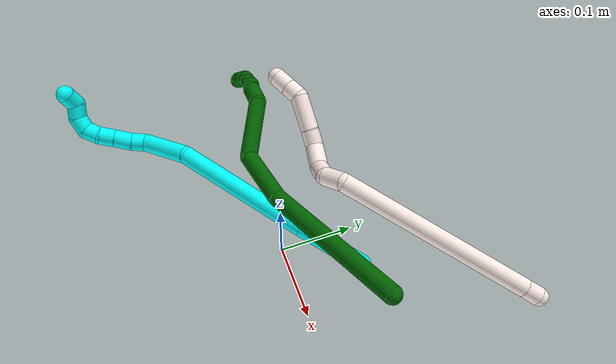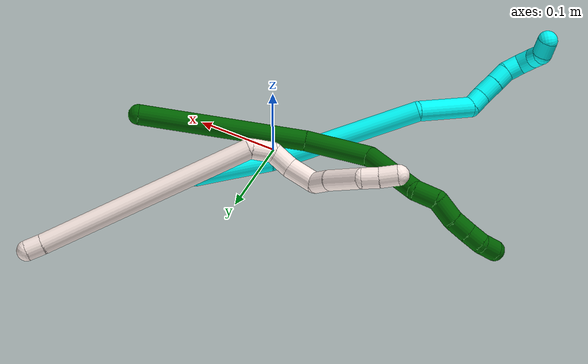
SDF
<sdf version="1.7">
 <world name="default">
  <model name="photoneo_s_sensor">
   <static>1</static>
   <pose>0 0 2 1.57079 1.57079 3.14159</pose>
   <link name="link">
    <inertial><mass>0.1</mass></inertial>
    <sensor name="sensor" type="depth">
     <update_rate>30</update_rate>
     <camera>
      <horizontal_fov>1.22</horizontal_fov>
      <image><width>1920</width><height>1200</height><format>B8G8R8</format></image>
      <clip><near>0.1</near><far>4</far></clip>
      <depth_camera><output>points</output></depth_camera>
     </camera>
     <plugin name="camera_plugin" filename="libgazebo_ros_depth_camera.so">
      <baseline>0.2</baseline>
      <alwaysOn>1</alwaysOn>
      <updateRate>0.0</updateRate>
      <cameraName>camera_ir</cameraName>
      <imageTopicName>/camera/color/image_raw</imageTopicName>
      <cameraInfoTopicName>/camera/color/camera_info</cameraInfoTopicName>
      <depthImageTopicName>/camera/depth/image_raw</depthImageTopicName>
      <depthImageCameraInfoTopicName>/camera/depth/camera_info</depthImageCameraInfoTopicName>
      <pointCloudTopicName>/camera/depth/points</pointCloudTopicName>
      <frameName>fr_optical</frameName>
      <pointCloudCutoff>0.1</pointCloudCutoff>
      <pointCloudCutoffMax>2.0</pointCloudCutoffMax>
      <distortionK1>0</distortionK1>
      <distortionK2>0</distortionK2>
      <distortionK3>0</distortionK3>
      <distortionT1>0</distortionT1>
      <distortionT2>0</distortionT2>
      <CxPrime>0</CxPrime>
      <Cx>0</Cx>
      <Cy>0</Cy>
      <focalLength>0</focalLength>
      <hackBaseline>0</hackBaseline>
     </plugin>
    </sensor>
   </link>
  </model>
  <model name="bin">
   <static>1</static>
   <link name="bottom">
    <collision name="collision-bottom">
     <pose>0 0 -0.01 0 -0 0</pose>
     <geometry><box><size>0.8 0.6 0.02</size></box></geometry>
     <surface>
      <friction><ode><mu>100</mu><mu2>100</mu2></ode></friction>
      <contact><collide_bitmask>65535</collide_bitmask></contact>
     </surface>
    </collision>
   </link>
   <link name="west_wall">
    <collision name="collision-west_wall">
     <pose>-0.41 0 0.1 0 -0 0</pose>
     <geometry><box><size>0.02 0.6 0.2</size></box></geometry>
     <surface>
      <friction><ode><mu>100</mu><mu2>100</mu2></ode></friction>
      <contact><collide_bitmask>65535</collide_bitmask></contact>
     </surface>
    </collision>
   </link>
   <link name="east_wall">
    <collision name="collision-east_wall">
     <pose>0.41 0 0.1 0 -0 0</pose>
     <geometry><box><size>0.02 0.6 0.2</size></box></geometry>
     <surface>
      <friction><ode><mu>100</mu><mu2>100</mu2></ode></friction>
      <contact><collide_bitmask>65535</collide_bitmask></contact>
     </surface>
    </collision>
   </link>
   <link name="south_wall">
    <collision name="collision-south_wall">
     <pose>0 -0.31 0.1 0 -0 0</pose>
     <geometry><box><size>0.8 0.02 0.2</size></box></geometry>
     <surface>
      <friction><ode><mu>100</mu><mu2>100</mu2></ode></friction>
      <contact><collide_bitmask>65535</collide_bitmask></contact>
     </surface>
    </collision>
   </link>
   <link name="north_wall">
    <collision name="collision-north_wall">
     <pose>0 0.31 0.1 0 -0 0</pose>
     <geometry><box><size>0.8 0.02 0.2</size></box></geometry>
     <surface>
      <friction><ode><mu>100</mu><mu2>100</mu2></ode></friction>
      <contact><collide_bitmask>65535</collide_bitmask></contact>
     </surface>
    </collision>
   </link>
  </model>
  <model name="3">
   <static>0</static>
   <link name="3">
    <collision name="collision-cylinder-e_1_1_4">
     <pose>-0.003328 -0.001134 0.047422 0.023901 -0.070034 -0.000837</pose>
     <geometry><cylinder><radius>0.0125</radius><length>0.095104</length></cylinder></geometry>
     <surface>
      <friction><ode><mu>1.16</mu><mu2>1.16</mu2><slip1>0</slip1><slip2>0</slip2></ode></friction>
      <contact><ode><kp>1e+06</kp><kd>1</kd><max_vel>0</max_vel><min_depth>0.001</min_depth></ode></contact>
     </surface>
    </collision>
    <visual name="visual-cylinder-e_1_1_4">
     <pose>-0.003328 -0.001134 0.047422 0.023901 -0.070034 -0.000837</pose>
     <geometry><cylinder><radius>0.0125</radius><length>0.095104</length></cylinder></geometry>
     <material><ambient>0.003922 1 0.996078 1</ambient></material>
    </visual>
    <collision name="collision-cylinder-e_2_4_5">
     <pose>-0.007986 -0.018782 0.18823 0.175034 -0.01403 -0.001231</pose>
     <geometry><cylinder><radius>0.0125</radius><length>0.18969</length></cylinder></geometry>
     <surface>
      <friction><ode><mu>1.16</mu><mu2>1.16</mu2><slip1>0</slip1><slip2>0</slip2></ode></friction>
      <contact><ode><kp>1e+06</kp><kd>1</kd><max_vel>0</max_vel><min_depth>0.001</min_depth></ode></contact>
     </surface>
    </collision>
    <visual name="visual-cylinder-e_2_4_5">
     <pose>-0.007986 -0.018782 0.18823 0.175034 -0.01403 -0.001231</pose>
     <geometry><cylinder><radius>0.0125</radius><length>0.18969</length></cylinder></geometry>
     <material><ambient>0.003922 1 0.996078 1</ambient></material>
    </visual>
    <collision name="collision-cylinder-e_3_5_6">
     <pose>-0.019521 -0.030261 0.315017 -0.149641 -0.293396 0.022151</pose>
     <geometry><cylinder><radius>0.0125</radius><length>0.070571</length></cylinder></geometry>
     <surface>
      <friction><ode><mu>1.16</mu><mu2>1.16</mu2><slip1>0</slip1><slip2>0</slip2></ode></friction>
      <contact><ode><kp>1e+06</kp><kd>1</kd><max_vel>0</max_vel><min_depth>0.001</min_depth></ode></contact>
     </surface>
    </collision>
    <visual name="visual-cylinder-e_3_5_6">
     <pose>-0.019521 -0.030261 0.315017 -0.149641 -0.293396 0.022151</pose>
     <geometry><cylinder><radius>0.0125</radius><length>0.070571</length></cylinder></geometry>
     <material><ambient>0.003922 1 0.996078 1</ambient></material>
    </visual>
    <collision name="collision-cylinder-e_4_6_7">
     <pose>-0.034315 -0.030051 0.356074 0.562363 -0.469249 -0.137859</pose>
     <geometry><cylinder><radius>0.0125</radius><length>0.020295</length></cylinder></geometry>
     <surface>
      <friction><ode><mu>1.16</mu><mu2>1.16</mu2><slip1>0</slip1><slip2>0</slip2></ode></friction>
      <contact><ode><kp>1e+06</kp><kd>1</kd><max_vel>0</max_vel><min_depth>0.001</min_depth></ode></contact>
     </surface>
    </collision>
    <visual name="visual-cylinder-e_4_6_7">
     <pose>-0.034315 -0.030051 0.356074 0.562363 -0.469249 -0.137859</pose>
     <geometry><cylinder><radius>0.0125</radius><length>0.020295</length></cylinder></geometry>
     <material><ambient>0.003922 1 0.996078 1</ambient></material>
    </visual>
    <collision name="collision-cylinder-e_5_7_8">
     <pose>-0.042728 -0.040797 0.373463 0.5465 -0.323889 -0.091511</pose>
     <geometry><cylinder><radius>0.0125</radius><length>0.024031</length></cylinder></geometry>
     <surface>
      <friction><ode><mu>1.16</mu><mu2>1.16</mu2><slip1>0</slip1><slip2>0</slip2></ode></friction>
      <contact><ode><kp>1e+06</kp><kd>1</kd><max_vel>0</max_vel><min_depth>0.001</min_depth></ode></contact>
     </surface>
    </collision>
    <visual name="visual-cylinder-e_5_7_8">
     <pose>-0.042728 -0.040797 0.373463 0.5465 -0.323889 -0.091511</pose>
     <geometry><cylinder><radius>0.0125</radius><length>0.024031</length></cylinder></geometry>
     <material><ambient>0.003922 1 0.996078 1</ambient></material>
    </visual>
    <collision name="collision-cylinder-e_6_8_9">
     <pose>-0.049945 -0.051797 0.39122 0.564357 -0.343127 -0.100381</pose>
     <geometry><cylinder><radius>0.0125</radius><length>0.020173</length></cylinder></geometry>
     <surface>
      <friction><ode><mu>1.16</mu><mu2>1.16</mu2><slip1>0</slip1><slip2>0</slip2></ode></friction>
      <contact><ode><kp>1e+06</kp><kd>1</kd><max_vel>0</max_vel><min_depth>0.001</min_depth></ode></contact>
     </surface>
    </collision>
    <visual name="visual-cylinder-e_6_8_9">
     <pose>-0.049945 -0.051797 0.39122 0.564357 -0.343127 -0.100381</pose>
     <geometry><cylinder><radius>0.0125</radius><length>0.020173</length></cylinder></geometry>
     <material><ambient>0.003922 1 0.996078 1</ambient></material>
    </visual>
    <collision name="collision-cylinder-e_7_9_10">
     <pose>-0.055128 -0.059688 0.408723 0.288277 -0.179048 -0.026056</pose>
     <geometry><cylinder><radius>0.0125</radius><length>0.020093</length></cylinder></geometry>
     <surface>
      <friction><ode><mu>1.16</mu><mu2>1.16</mu2><slip1>0</slip1><slip2>0</slip2></ode></friction>
      <contact><ode><kp>1e+06</kp><kd>1</kd><max_vel>0</max_vel><min_depth>0.001</min_depth></ode></contact>
     </surface>
    </collision>
    <visual name="visual-cylinder-e_7_9_10">
     <pose>-0.055128 -0.059688 0.408723 0.288277 -0.179048 -0.026056</pose>
     <geometry><cylinder><radius>0.0125</radius><length>0.020093</length></cylinder></geometry>
     <material><ambient>0.003922 1 0.996078 1</ambient></material>
    </visual>
    <collision name="collision-cylinder-e_8_10_11">
     <pose>-0.052347 -0.06625 0.426272 0.435087 0.47433 0.106756</pose>
     <geometry><cylinder><radius>0.0125</radius><length>0.020009</length></cylinder></geometry>
     <surface>
      <friction><ode><mu>1.16</mu><mu2>1.16</mu2><slip1>0</slip1><slip2>0</slip2></ode></friction>
      <contact><ode><kp>1e+06</kp><kd>1</kd><max_vel>0</max_vel><min_depth>0.001</min_depth></ode></contact>
     </surface>
    </collision>
    <visual name="visual-cylinder-e_8_10_11">
     <pose>-0.052347 -0.06625 0.426272 0.435087 0.47433 0.106756</pose>
     <geometry><cylinder><radius>0.0125</radius><length>0.020009</length></cylinder></geometry>
     <material><ambient>0.003922 1 0.996078 1</ambient></material>
    </visual>
    <collision name="collision-cylinder-e_9_11_12">
     <pose>-0.039464 -0.073395 0.438759 0.65523 0.98061 0.35892</pose>
     <geometry><cylinder><radius>0.0125</radius><length>0.020014</length></cylinder></geometry>
     <surface>
      <friction><ode><mu>1.16</mu><mu2>1.16</mu2><slip1>0</slip1><slip2>0</slip2></ode></friction>
      <contact><ode><kp>1e+06</kp><kd>1</kd><max_vel>0</max_vel><min_depth>0.001</min_depth></ode></contact>
     </surface>
    </collision>
    <visual name="visual-cylinder-e_9_11_12">
     <pose>-0.039464 -0.073395 0.438759 0.65523 0.98061 0.35892</pose>
     <geometry><cylinder><radius>0.0125</radius><length>0.020014</length></cylinder></geometry>
     <material><ambient>0.003922 1 0.996078 1</ambient></material>
    </visual>
    <collision name="collision-cylinder-e_10_12_2">
     <pose>-0.028296 -0.085407 0.44739 1.11592 0.289062 0.181176</pose>
     <geometry><cylinder><radius>0.0125</radius><length>0.02002</length></cylinder></geometry>
     <surface>
      <friction><ode><mu>1.16</mu><mu2>1.16</mu2><slip1>0</slip1><slip2>0</slip2></ode></friction>
      <contact><ode><kp>1e+06</kp><kd>1</kd><max_vel>0</max_vel><min_depth>0.001</min_depth></ode></contact>
     </surface>
    </collision>
    <visual name="visual-cylinder-e_10_12_2">
     <pose>-0.028296 -0.085407 0.44739 1.11592 0.289062 0.181176</pose>
     <geometry><cylinder><radius>0.0125</radius><length>0.02002</length></cylinder></geometry>
     <material><ambient>0.003922 1 0.996078 1</ambient></material>
    </visual>
    <collision name="collision-sphere-2">
     <pose>-0.025443 -0.094026 0.451606 0 -0 0</pose>
     <geometry><sphere><radius>0.0125</radius></sphere></geometry>
     <surface>
      <friction><ode><mu>1.16</mu><mu2>1.16</mu2><slip1>0</slip1><slip2>0</slip2></ode></friction>
      <contact><ode><kp>1e+06</kp><kd>1</kd><max_vel>0</max_vel><min_depth>0.001</min_depth></ode></contact>
     </surface>
    </collision>
    <visual name="visual-sphere-2">
     <pose>-0.025443 -0.094026 0.451606 0 -0 0</pose>
     <geometry><sphere><radius>0.0125</radius></sphere></geometry>
     <material><ambient>0.003922 1 0.996078 1</ambient></material>
    </visual>
    <collision name="collision-sphere-12">
     <pose>-0.031149 -0.076788 0.443175 0 -0 0</pose>
     <geometry><sphere><radius>0.0125</radius></sphere></geometry>
     <surface>
      <friction><ode><mu>1.16</mu><mu2>1.16</mu2><slip1>0</slip1><slip2>0</slip2></ode></friction>
      <contact><ode><kp>1e+06</kp><kd>1</kd><max_vel>0</max_vel><min_depth>0.001</min_depth></ode></contact>
     </surface>
    </collision>
    <visual name="visual-sphere-12">
     <pose>-0.031149 -0.076788 0.443175 0 -0 0</pose>
     <geometry><sphere><radius>0.0125</radius></sphere></geometry>
     <material><ambient>0.003922 1 0.996078 1</ambient></material>
    </visual>
    <collision name="collision-sphere-11">
     <pose>-0.047778 -0.070001 0.434343 0 -0 0</pose>
     <geometry><sphere><radius>0.0125</radius></sphere></geometry>
     <surface>
      <friction><ode><mu>1.16</mu><mu2>1.16</mu2><slip1>0</slip1><slip2>0</slip2></ode></friction>
      <contact><ode><kp>1e+06</kp><kd>1</kd><max_vel>0</max_vel><min_depth>0.001</min_depth></ode></contact>
     </surface>
    </collision>
    <visual name="visual-sphere-11">
     <pose>-0.047778 -0.070001 0.434343 0 -0 0</pose>
     <geometry><sphere><radius>0.0125</radius></sphere></geometry>
     <material><ambient>0.003922 1 0.996078 1</ambient></material>
    </visual>
    <collision name="collision-sphere-10">
     <pose>-0.056917 -0.062498 0.418201 0 -0 0</pose>
     <geometry><sphere><radius>0.0125</radius></sphere></geometry>
     <surface>
      <friction><ode><mu>1.16</mu><mu2>1.16</mu2><slip1>0</slip1><slip2>0</slip2></ode></friction>
      <contact><ode><kp>1e+06</kp><kd>1</kd><max_vel>0</max_vel><min_depth>0.001</min_depth></ode></contact>
     </surface>
    </collision>
    <visual name="visual-sphere-10">
     <pose>-0.056917 -0.062498 0.418201 0 -0 0</pose>
     <geometry><sphere><radius>0.0125</radius></sphere></geometry>
     <material><ambient>0.003922 1 0.996078 1</ambient></material>
    </visual>
    <collision name="collision-sphere-9">
     <pose>-0.053338 -0.056877 0.399246 0 -0 0</pose>
     <geometry><sphere><radius>0.0125</radius></sphere></geometry>
     <surface>
      <friction><ode><mu>1.16</mu><mu2>1.16</mu2><slip1>0</slip1><slip2>0</slip2></ode></friction>
      <contact><ode><kp>1e+06</kp><kd>1</kd><max_vel>0</max_vel><min_depth>0.001</min_depth></ode></contact>
     </surface>
    </collision>
    <visual name="visual-sphere-9">
     <pose>-0.053338 -0.056877 0.399246 0 -0 0</pose>
     <geometry><sphere><radius>0.0125</radius></sphere></geometry>
     <material><ambient>0.003922 1 0.996078 1</ambient></material>
    </visual>
    <collision name="collision-sphere-4">
     <pose>-0.006655 -0.002267 0.094843 0 -0 0</pose>
     <geometry><sphere><radius>0.0125</radius></sphere></geometry>
     <surface>
      <friction><ode><mu>1.16</mu><mu2>1.16</mu2><slip1>0</slip1><slip2>0</slip2></ode></friction>
      <contact><ode><kp>1e+06</kp><kd>1</kd><max_vel>0</max_vel><min_depth>0.001</min_depth></ode></contact>
     </surface>
    </collision>
    <visual name="visual-sphere-4">
     <pose>-0.006655 -0.002267 0.094843 0 -0 0</pose>
     <geometry><sphere><radius>0.0125</radius></sphere></geometry>
     <material><ambient>0.003922 1 0.996078 1</ambient></material>
    </visual>
    <collision name="collision-sphere-1">
     <geometry><sphere><radius>0.0125</radius></sphere></geometry>
     <surface>
      <friction><ode><mu>1.16</mu><mu2>1.16</mu2><slip1>0</slip1><slip2>0</slip2></ode></friction>
      <contact><ode><kp>1e+06</kp><kd>1</kd><max_vel>0</max_vel><min_depth>0.001</min_depth></ode></contact>
     </surface>
    </collision>
    <visual name="visual-sphere-1">
     <geometry><sphere><radius>0.0125</radius></sphere></geometry>
     <material><ambient>0.003922 1 0.996078 1</ambient></material>
    </visual>
    <collision name="collision-sphere-8">
     <pose>-0.046552 -0.046717 0.383195 0 -0 0</pose>
     <geometry><sphere><radius>0.0125</radius></sphere></geometry>
     <surface>
      <friction><ode><mu>1.16</mu><mu2>1.16</mu2><slip1>0</slip1><slip2>0</slip2></ode></friction>
      <contact><ode><kp>1e+06</kp><kd>1</kd><max_vel>0</max_vel><min_depth>0.001</min_depth></ode></contact>
     </surface>
    </collision>
    <visual name="visual-sphere-8">
     <pose>-0.046552 -0.046717 0.383195 0 -0 0</pose>
     <geometry><sphere><radius>0.0125</radius></sphere></geometry>
     <material><ambient>0.003922 1 0.996078 1</ambient></material>
    </visual>
    <collision name="collision-sphere-5">
     <pose>-0.009316 -0.035297 0.281617 0 -0 0</pose>
     <geometry><sphere><radius>0.0125</radius></sphere></geometry>
     <surface>
      <friction><ode><mu>1.16</mu><mu2>1.16</mu2><slip1>0</slip1><slip2>0</slip2></ode></friction>
      <contact><ode><kp>1e+06</kp><kd>1</kd><max_vel>0</max_vel><min_depth>0.001</min_depth></ode></contact>
     </surface>
    </collision>
    <visual name="visual-sphere-5">
     <pose>-0.009316 -0.035297 0.281617 0 -0 0</pose>
     <geometry><sphere><radius>0.0125</radius></sphere></geometry>
     <material><ambient>0.003922 1 0.996078 1</ambient></material>
    </visual>
    <collision name="collision-sphere-6">
     <pose>-0.029726 -0.025226 0.348418 0 -0 0</pose>
     <geometry><sphere><radius>0.0125</radius></sphere></geometry>
     <surface>
      <friction><ode><mu>1.16</mu><mu2>1.16</mu2><slip1>0</slip1><slip2>0</slip2></ode></friction>
      <contact><ode><kp>1e+06</kp><kd>1</kd><max_vel>0</max_vel><min_depth>0.001</min_depth></ode></contact>
     </surface>
    </collision>
    <visual name="visual-sphere-6">
     <pose>-0.029726 -0.025226 0.348418 0 -0 0</pose>
     <geometry><sphere><radius>0.0125</radius></sphere></geometry>
     <material><ambient>0.003922 1 0.996078 1</ambient></material>
    </visual>
    <collision name="collision-sphere-7">
     <pose>-0.038904 -0.034877 0.363731 0 -0 0</pose>
     <geometry><sphere><radius>0.0125</radius></sphere></geometry>
     <surface>
      <friction><ode><mu>1.16</mu><mu2>1.16</mu2><slip1>0</slip1><slip2>0</slip2></ode></friction>
      <contact><ode><kp>1e+06</kp><kd>1</kd><max_vel>0</max_vel><min_depth>0.001</min_depth></ode></contact>
     </surface>
    </collision>
    <visual name="visual-sphere-7">
     <pose>-0.038904 -0.034877 0.363731 0 -0 0</pose>
     <geometry><sphere><radius>0.0125</radius></sphere></geometry>
     <material><ambient>0.003922 1 0.996078 1</ambient></material>
    </visual>
    <inertial>
     <pose>-0.018902 -0.02829 0.242039 0 -0 0</pose>
     <mass>0.5</mass>
     <inertia><ixx>0.00069</ixx><ixy>0</ixy><ixz>0</ixz><iyy>0.000676</iyy><iyz>0</iyz><izz>0.00016</izz></inertia>
    </inertial>
   </link>
   <pose>0.060456 0.091188 0.011448 -1.45426 -0.587532 2.09978</pose>
  </model>
  <model name="6">
   <static>0</static>
   <link name="6">
    <collision name="collision-cylinder-e_1_1_4">
     <pose>-0.093093 0.041727 -0.010607 -1.81973 -1.1376 1.37616</pose>
     <geometry><cylinder><radius>0.0125</radius><length>0.205134</length></cylinder></geometry>
     <surface>
      <friction><ode><mu>1.16</mu><mu2>1.16</mu2><slip1>0</slip1><slip2>0</slip2></ode></friction>
      <contact><ode><kp>1e+06</kp><kd>1</kd><max_vel>0</max_vel><min_depth>0.001</min_depth></ode></contact>
     </surface>
    </collision>
    <visual name="visual-cylinder-e_1_1_4">
     <pose>-0.093093 0.041727 -0.010607 -1.81973 -1.1376 1.37616</pose>
     <geometry><cylinder><radius>0.0125</radius><length>0.205134</length></cylinder></geometry>
     <material><ambient>0 0.392157 0.003922 1</ambient></material>
    </visual>
    <collision name="collision-cylinder-e_2_4_5">
     <pose>-0.223904 0.097382 -0.016633 -1.25301 -1.20006 0.919589</pose>
     <geometry><cylinder><radius>0.0125</radius><length>0.080935</length></cylinder></geometry>
     <surface>
      <friction><ode><mu>1.16</mu><mu2>1.16</mu2><slip1>0</slip1><slip2>0</slip2></ode></friction>
      <contact><ode><kp>1e+06</kp><kd>1</kd><max_vel>0</max_vel><min_depth>0.001</min_depth></ode></contact>
     </surface>
    </collision>
    <visual name="visual-cylinder-e_2_4_5">
     <pose>-0.223904 0.097382 -0.016633 -1.25301 -1.20006 0.919589</pose>
     <geometry><cylinder><radius>0.0125</radius><length>0.080935</length></cylinder></geometry>
     <material><ambient>0 0.392157 0.003922 1</ambient></material>
    </visual>
    <collision name="collision-cylinder-e_3_5_6">
     <pose>-0.292623 0.115995 0.019526 -0.147292 -0.77075 0.059841</pose>
     <geometry><cylinder><radius>0.0125</radius><length>0.088998</length></cylinder></geometry>
     <surface>
      <friction><ode><mu>1.16</mu><mu2>1.16</mu2><slip1>0</slip1><slip2>0</slip2></ode></friction>
      <contact><ode><kp>1e+06</kp><kd>1</kd><max_vel>0</max_vel><min_depth>0.001</min_depth></ode></contact>
     </surface>
    </collision>
    <visual name="visual-cylinder-e_3_5_6">
     <pose>-0.292623 0.115995 0.019526 -0.147292 -0.77075 0.059841</pose>
     <geometry><cylinder><radius>0.0125</radius><length>0.088998</length></cylinder></geometry>
     <material><ambient>0 0.392157 0.003922 1</ambient></material>
    </visual>
    <collision name="collision-cylinder-e_4_6_7">
     <pose>-0.336335 0.126754 0.054902 -1.01185 -1.05751 0.626086</pose>
     <geometry><cylinder><radius>0.0125</radius><length>0.029181</length></cylinder></geometry>
     <surface>
      <friction><ode><mu>1.16</mu><mu2>1.16</mu2><slip1>0</slip1><slip2>0</slip2></ode></friction>
      <contact><ode><kp>1e+06</kp><kd>1</kd><max_vel>0</max_vel><min_depth>0.001</min_depth></ode></contact>
     </surface>
    </collision>
    <visual name="visual-cylinder-e_4_6_7">
     <pose>-0.336335 0.126754 0.054902 -1.01185 -1.05751 0.626086</pose>
     <geometry><cylinder><radius>0.0125</radius><length>0.029181</length></cylinder></geometry>
     <material><ambient>0 0.392157 0.003922 1</ambient></material>
    </visual>
    <collision name="collision-cylinder-e_5_7_8">
     <pose>-0.35605 0.144874 0.063639 -1.18177 -0.493597 0.33485</pose>
     <geometry><cylinder><radius>0.0125</radius><length>0.029566</length></cylinder></geometry>
     <surface>
      <friction><ode><mu>1.16</mu><mu2>1.16</mu2><slip1>0</slip1><slip2>0</slip2></ode></friction>
      <contact><ode><kp>1e+06</kp><kd>1</kd><max_vel>0</max_vel><min_depth>0.001</min_depth></ode></contact>
     </surface>
    </collision>
    <visual name="visual-cylinder-e_5_7_8">
     <pose>-0.35605 0.144874 0.063639 -1.18177 -0.493597 0.33485</pose>
     <geometry><cylinder><radius>0.0125</radius><length>0.029566</length></cylinder></geometry>
     <material><ambient>0 0.392157 0.003922 1</ambient></material>
    </visual>
    <collision name="collision-cylinder-e_6_8_9">
     <pose>-0.370284 0.165944 0.070752 -1.33427 -0.661685 0.528384</pose>
     <geometry><cylinder><radius>0.0125</radius><length>0.023532</length></cylinder></geometry>
     <surface>
      <friction><ode><mu>1.16</mu><mu2>1.16</mu2><slip1>0</slip1><slip2>0</slip2></ode></friction>
      <contact><ode><kp>1e+06</kp><kd>1</kd><max_vel>0</max_vel><min_depth>0.001</min_depth></ode></contact>
     </surface>
    </collision>
    <visual name="visual-cylinder-e_6_8_9">
     <pose>-0.370284 0.165944 0.070752 -1.33427 -0.661685 0.528384</pose>
     <geometry><cylinder><radius>0.0125</radius><length>0.023532</length></cylinder></geometry>
     <material><ambient>0 0.392157 0.003922 1</ambient></material>
    </visual>
    <collision name="collision-cylinder-e_7_9_10">
     <pose>-0.384057 0.182507 0.074873 -1.31819 -0.698973 0.550319</pose>
     <geometry><cylinder><radius>0.0125</radius><length>0.020341</length></cylinder></geometry>
     <surface>
      <friction><ode><mu>1.16</mu><mu2>1.16</mu2><slip1>0</slip1><slip2>0</slip2></ode></friction>
      <contact><ode><kp>1e+06</kp><kd>1</kd><max_vel>0</max_vel><min_depth>0.001</min_depth></ode></contact>
     </surface>
    </collision>
    <visual name="visual-cylinder-e_7_9_10">
     <pose>-0.384057 0.182507 0.074873 -1.31819 -0.698973 0.550319</pose>
     <geometry><cylinder><radius>0.0125</radius><length>0.020341</length></cylinder></geometry>
     <material><ambient>0 0.392157 0.003922 1</ambient></material>
    </visual>
    <collision name="collision-cylinder-e_8_10_2">
     <pose>-0.396346 0.199057 0.073616 -1.91237 -0.540953 0.748648</pose>
     <geometry><cylinder><radius>0.0125</radius><length>0.022312</length></cylinder></geometry>
     <surface>
      <friction><ode><mu>1.16</mu><mu2>1.16</mu2><slip1>0</slip1><slip2>0</slip2></ode></friction>
      <contact><ode><kp>1e+06</kp><kd>1</kd><max_vel>0</max_vel><min_depth>0.001</min_depth></ode></contact>
     </surface>
    </collision>
    <visual name="visual-cylinder-e_8_10_2">
     <pose>-0.396346 0.199057 0.073616 -1.91237 -0.540953 0.748648</pose>
     <geometry><cylinder><radius>0.0125</radius><length>0.022312</length></cylinder></geometry>
     <material><ambient>0 0.392157 0.003922 1</ambient></material>
    </visual>
    <collision name="collision-sphere-2">
     <pose>-0.402091 0.208067 0.070412 0 -0 0</pose>
     <geometry><sphere><radius>0.0125</radius></sphere></geometry>
     <surface>
      <friction><ode><mu>1.16</mu><mu2>1.16</mu2><slip1>0</slip1><slip2>0</slip2></ode></friction>
      <contact><ode><kp>1e+06</kp><kd>1</kd><max_vel>0</max_vel><min_depth>0.001</min_depth></ode></contact>
     </surface>
    </collision>
    <visual name="visual-sphere-2">
     <pose>-0.402091 0.208067 0.070412 0 -0 0</pose>
     <geometry><sphere><radius>0.0125</radius></sphere></geometry>
     <material><ambient>0 0.392157 0.003922 1</ambient></material>
    </visual>
    <collision name="collision-sphere-10">
     <pose>-0.390601 0.190046 0.076819 0 -0 0</pose>
     <geometry><sphere><radius>0.0125</radius></sphere></geometry>
     <surface>
      <friction><ode><mu>1.16</mu><mu2>1.16</mu2><slip1>0</slip1><slip2>0</slip2></ode></friction>
      <contact><ode><kp>1e+06</kp><kd>1</kd><max_vel>0</max_vel><min_depth>0.001</min_depth></ode></contact>
     </surface>
    </collision>
    <visual name="visual-sphere-10">
     <pose>-0.390601 0.190046 0.076819 0 -0 0</pose>
     <geometry><sphere><radius>0.0125</radius></sphere></geometry>
     <material><ambient>0 0.392157 0.003922 1</ambient></material>
    </visual>
    <collision name="collision-sphere-9">
     <pose>-0.377513 0.174969 0.072928 0 -0 0</pose>
     <geometry><sphere><radius>0.0125</radius></sphere></geometry>
     <surface>
      <friction><ode><mu>1.16</mu><mu2>1.16</mu2><slip1>0</slip1><slip2>0</slip2></ode></friction>
      <contact><ode><kp>1e+06</kp><kd>1</kd><max_vel>0</max_vel><min_depth>0.001</min_depth></ode></contact>
     </surface>
    </collision>
    <visual name="visual-sphere-9">
     <pose>-0.377513 0.174969 0.072928 0 -0 0</pose>
     <geometry><sphere><radius>0.0125</radius></sphere></geometry>
     <material><ambient>0 0.392157 0.003922 1</ambient></material>
    </visual>
    <collision name="collision-sphere-4">
     <pose>-0.186186 0.083455 -0.021214 0 -0 0</pose>
     <geometry><sphere><radius>0.0125</radius></sphere></geometry>
     <surface>
      <friction><ode><mu>1.16</mu><mu2>1.16</mu2><slip1>0</slip1><slip2>0</slip2></ode></friction>
      <contact><ode><kp>1e+06</kp><kd>1</kd><max_vel>0</max_vel><min_depth>0.001</min_depth></ode></contact>
     </surface>
    </collision>
    <visual name="visual-sphere-4">
     <pose>-0.186186 0.083455 -0.021214 0 -0 0</pose>
     <geometry><sphere><radius>0.0125</radius></sphere></geometry>
     <material><ambient>0 0.392157 0.003922 1</ambient></material>
    </visual>
    <collision name="collision-sphere-1">
     <geometry><sphere><radius>0.0125</radius></sphere></geometry>
     <surface>
      <friction><ode><mu>1.16</mu><mu2>1.16</mu2><slip1>0</slip1><slip2>0</slip2></ode></friction>
      <contact><ode><kp>1e+06</kp><kd>1</kd><max_vel>0</max_vel><min_depth>0.001</min_depth></ode></contact>
     </surface>
    </collision>
    <visual name="visual-sphere-1">
     <geometry><sphere><radius>0.0125</radius></sphere></geometry>
     <material><ambient>0 0.392157 0.003922 1</ambient></material>
    </visual>
    <collision name="collision-sphere-8">
     <pose>-0.363054 0.15692 0.068577 0 -0 0</pose>
     <geometry><sphere><radius>0.0125</radius></sphere></geometry>
     <surface>
      <friction><ode><mu>1.16</mu><mu2>1.16</mu2><slip1>0</slip1><slip2>0</slip2></ode></friction>
      <contact><ode><kp>1e+06</kp><kd>1</kd><max_vel>0</max_vel><min_depth>0.001</min_depth></ode></contact>
     </surface>
    </collision>
    <visual name="visual-sphere-8">
     <pose>-0.363054 0.15692 0.068577 0 -0 0</pose>
     <geometry><sphere><radius>0.0125</radius></sphere></geometry>
     <material><ambient>0 0.392157 0.003922 1</ambient></material>
    </visual>
    <collision name="collision-sphere-5">
     <pose>-0.261622 0.11131 -0.012052 0 -0 0</pose>
     <geometry><sphere><radius>0.0125</radius></sphere></geometry>
     <surface>
      <friction><ode><mu>1.16</mu><mu2>1.16</mu2><slip1>0</slip1><slip2>0</slip2></ode></friction>
      <contact><ode><kp>1e+06</kp><kd>1</kd><max_vel>0</max_vel><min_depth>0.001</min_depth></ode></contact>
     </surface>
    </collision>
    <visual name="visual-sphere-5">
     <pose>-0.261622 0.11131 -0.012052 0 -0 0</pose>
     <geometry><sphere><radius>0.0125</radius></sphere></geometry>
     <material><ambient>0 0.392157 0.003922 1</ambient></material>
    </visual>
    <collision name="collision-sphere-6">
     <pose>-0.323625 0.12068 0.051103 0 -0 0</pose>
     <geometry><sphere><radius>0.0125</radius></sphere></geometry>
     <surface>
      <friction><ode><mu>1.16</mu><mu2>1.16</mu2><slip1>0</slip1><slip2>0</slip2></ode></friction>
      <contact><ode><kp>1e+06</kp><kd>1</kd><max_vel>0</max_vel><min_depth>0.001</min_depth></ode></contact>
     </surface>
    </collision>
    <visual name="visual-sphere-6">
     <pose>-0.323625 0.12068 0.051103 0 -0 0</pose>
     <geometry><sphere><radius>0.0125</radius></sphere></geometry>
     <material><ambient>0 0.392157 0.003922 1</ambient></material>
    </visual>
    <collision name="collision-sphere-7">
     <pose>-0.349046 0.132829 0.058702 0 -0 0</pose>
     <geometry><sphere><radius>0.0125</radius></sphere></geometry>
     <surface>
      <friction><ode><mu>1.16</mu><mu2>1.16</mu2><slip1>0</slip1><slip2>0</slip2></ode></friction>
      <contact><ode><kp>1e+06</kp><kd>1</kd><max_vel>0</max_vel><min_depth>0.001</min_depth></ode></contact>
     </surface>
    </collision>
    <visual name="visual-sphere-7">
     <pose>-0.349046 0.132829 0.058702 0 -0 0</pose>
     <geometry><sphere><radius>0.0125</radius></sphere></geometry>
     <material><ambient>0 0.392157 0.003922 1</ambient></material>
    </visual>
    <inertial>
     <pose>-0.217944 0.093611 0.01306 0 -0 0</pose>
     <mass>0.5</mass>
     <inertia><ixx>0.00041</ixx><ixy>0</ixy><ixz>0</ixz><iyy>0.00104</iyy><iyz>0</iyz><izz>0.000434</izz></inertia>
    </inertial>
   </link>
   <pose>0.137066 0.088907 0.082214 -1.40325 0.290992 0.356351</pose>
  </model>
  <model name="11">
   <static>0</static>
   <link name="11">
    <collision name="collision-cylinder-e_1_1_4">
     <pose>-0.006228 -0.007375 0.003402 1.13858 -0.654172 -0.427609</pose>
     <geometry><cylinder><radius>0.0125</radius><length>0.020469</length></cylinder></geometry>
     <surface>
      <friction><ode><mu>1.16</mu><mu2>1.16</mu2><slip1>0</slip1><slip2>0</slip2></ode></friction>
      <contact><ode><kp>1e+06</kp><kd>1</kd><max_vel>0</max_vel><min_depth>0.001</min_depth></ode></contact>
     </surface>
    </collision>
    <visual name="visual-cylinder-e_1_1_4">
     <pose>-0.006228 -0.007375 0.003402 1.13858 -0.654172 -0.427609</pose>
     <geometry><cylinder><radius>0.0125</radius><length>0.020469</length></cylinder></geometry>
     <material><ambient>1 0.933333 0.909804 1</ambient></material>
    </visual>
    <collision name="collision-cylinder-e_2_4_5">
     <pose>-0.091678 -0.115997 0.048661 1.17878 -0.626068 -0.426292</pose>
     <geometry><cylinder><radius>0.0125</radius><length>0.270401</length></cylinder></geometry>
     <surface>
      <friction><ode><mu>1.16</mu><mu2>1.16</mu2><slip1>0</slip1><slip2>0</slip2></ode></friction>
      <contact><ode><kp>1e+06</kp><kd>1</kd><max_vel>0</max_vel><min_depth>0.001</min_depth></ode></contact>
     </surface>
    </collision>
    <visual name="visual-cylinder-e_2_4_5">
     <pose>-0.091678 -0.115997 0.048661 1.17878 -0.626068 -0.426292</pose>
     <geometry><cylinder><radius>0.0125</radius><length>0.270401</length></cylinder></geometry>
     <material><ambient>1 0.933333 0.909804 1</ambient></material>
    </visual>
    <collision name="collision-cylinder-e_3_5_6">
     <pose>-0.184962 -0.21977 0.094518 0.563385 -1.24624 -0.41008</pose>
     <geometry><cylinder><radius>0.0125</radius><length>0.029672</length></cylinder></geometry>
     <surface>
      <friction><ode><mu>1.16</mu><mu2>1.16</mu2><slip1>0</slip1><slip2>0</slip2></ode></friction>
      <contact><ode><kp>1e+06</kp><kd>1</kd><max_vel>0</max_vel><min_depth>0.001</min_depth></ode></contact>
     </surface>
    </collision>
    <visual name="visual-cylinder-e_3_5_6">
     <pose>-0.184962 -0.21977 0.094518 0.563385 -1.24624 -0.41008</pose>
     <geometry><cylinder><radius>0.0125</radius><length>0.029672</length></cylinder></geometry>
     <material><ambient>1 0.933333 0.909804 1</ambient></material>
    </visual>
    <collision name="collision-cylinder-e_4_6_7">
     <pose>-0.209073 -0.218214 0.106415 -0.477148 -0.846517 0.218251</pose>
     <geometry><cylinder><radius>0.0125</radius><length>0.026836</length></cylinder></geometry>
     <surface>
      <friction><ode><mu>1.16</mu><mu2>1.16</mu2><slip1>0</slip1><slip2>0</slip2></ode></friction>
      <contact><ode><kp>1e+06</kp><kd>1</kd><max_vel>0</max_vel><min_depth>0.001</min_depth></ode></contact>
     </surface>
    </collision>
    <visual name="visual-cylinder-e_4_6_7">
     <pose>-0.209073 -0.218214 0.106415 -0.477148 -0.846517 0.218251</pose>
     <geometry><cylinder><radius>0.0125</radius><length>0.026836</length></cylinder></geometry>
     <material><ambient>1 0.933333 0.909804 1</ambient></material>
    </visual>
    <collision name="collision-cylinder-e_5_7_8">
     <pose>-0.227811 -0.213447 0.130799 -0.041483 -0.484669 0.010256</pose>
     <geometry><cylinder><radius>0.0125</radius><length>0.037295</length></cylinder></geometry>
     <surface>
      <friction><ode><mu>1.16</mu><mu2>1.16</mu2><slip1>0</slip1><slip2>0</slip2></ode></friction>
      <contact><ode><kp>1e+06</kp><kd>1</kd><max_vel>0</max_vel><min_depth>0.001</min_depth></ode></contact>
     </surface>
    </collision>
    <visual name="visual-cylinder-e_5_7_8">
     <pose>-0.227811 -0.213447 0.130799 -0.041483 -0.484669 0.010256</pose>
     <geometry><cylinder><radius>0.0125</radius><length>0.037295</length></cylinder></geometry>
     <material><ambient>1 0.933333 0.909804 1</ambient></material>
    </visual>
    <collision name="collision-cylinder-e_6_8_9">
     <pose>-0.237621 -0.219075 0.156894 0.581283 -0.097198 -0.029094</pose>
     <geometry><cylinder><radius>0.0125</radius><length>0.023104</length></cylinder></geometry>
     <surface>
      <friction><ode><mu>1.16</mu><mu2>1.16</mu2><slip1>0</slip1><slip2>0</slip2></ode></friction>
      <contact><ode><kp>1e+06</kp><kd>1</kd><max_vel>0</max_vel><min_depth>0.001</min_depth></ode></contact>
     </surface>
    </collision>
    <visual name="visual-cylinder-e_6_8_9">
     <pose>-0.237621 -0.219075 0.156894 0.581283 -0.097198 -0.029094</pose>
     <geometry><cylinder><radius>0.0125</radius><length>0.023104</length></cylinder></geometry>
     <material><ambient>1 0.933333 0.909804 1</ambient></material>
    </visual>
    <collision name="collision-cylinder-e_7_9_10">
     <pose>-0.243274 -0.237342 0.187267 0.522361 -0.186959 -0.050107</pose>
     <geometry><cylinder><radius>0.0125</radius><length>0.048768</length></cylinder></geometry>
     <surface>
      <friction><ode><mu>1.16</mu><mu2>1.16</mu2><slip1>0</slip1><slip2>0</slip2></ode></friction>
      <contact><ode><kp>1e+06</kp><kd>1</kd><max_vel>0</max_vel><min_depth>0.001</min_depth></ode></contact>
     </surface>
    </collision>
    <visual name="visual-cylinder-e_7_9_10">
     <pose>-0.243274 -0.237342 0.187267 0.522361 -0.186959 -0.050107</pose>
     <geometry><cylinder><radius>0.0125</radius><length>0.048768</length></cylinder></geometry>
     <material><ambient>1 0.933333 0.909804 1</ambient></material>
    </visual>
    <collision name="collision-cylinder-e_8_10_11">
     <pose>-0.254841 -0.25417 0.214012 0.683799 -0.739254 -0.274029</pose>
     <geometry><cylinder><radius>0.0125</radius><length>0.020882</length></cylinder></geometry>
     <surface>
      <friction><ode><mu>1.16</mu><mu2>1.16</mu2><slip1>0</slip1><slip2>0</slip2></ode></friction>
      <contact><ode><kp>1e+06</kp><kd>1</kd><max_vel>0</max_vel><min_depth>0.001</min_depth></ode></contact>
     </surface>
    </collision>
    <visual name="visual-cylinder-e_8_10_11">
     <pose>-0.254841 -0.25417 0.214012 0.683799 -0.739254 -0.274029</pose>
     <geometry><cylinder><radius>0.0125</radius><length>0.020882</length></cylinder></geometry>
     <material><ambient>1 0.933333 0.909804 1</ambient></material>
    </visual>
    <collision name="collision-cylinder-e_9_11_2">
     <pose>-0.269019 -0.265194 0.226201 0.780573 -0.685334 -0.291438</pose>
     <geometry><cylinder><radius>0.0125</radius><length>0.022573</length></cylinder></geometry>
     <surface>
      <friction><ode><mu>1.16</mu><mu2>1.16</mu2><slip1>0</slip1><slip2>0</slip2></ode></friction>
      <contact><ode><kp>1e+06</kp><kd>1</kd><max_vel>0</max_vel><min_depth>0.001</min_depth></ode></contact>
     </surface>
    </collision>
    <visual name="visual-cylinder-e_9_11_2">
     <pose>-0.269019 -0.265194 0.226201 0.780573 -0.685334 -0.291438</pose>
     <geometry><cylinder><radius>0.0125</radius><length>0.022573</length></cylinder></geometry>
     <material><ambient>1 0.933333 0.909804 1</ambient></material>
    </visual>
    <collision name="collision-sphere-2">
     <pose>-0.276162 -0.271342 0.232409 0 -0 0</pose>
     <geometry><sphere><radius>0.0125</radius></sphere></geometry>
     <surface>
      <friction><ode><mu>1.16</mu><mu2>1.16</mu2><slip1>0</slip1><slip2>0</slip2></ode></friction>
      <contact><ode><kp>1e+06</kp><kd>1</kd><max_vel>0</max_vel><min_depth>0.001</min_depth></ode></contact>
     </surface>
    </collision>
    <visual name="visual-sphere-2">
     <pose>-0.276162 -0.271342 0.232409 0 -0 0</pose>
     <geometry><sphere><radius>0.0125</radius></sphere></geometry>
     <material><ambient>1 0.933333 0.909804 1</ambient></material>
    </visual>
    <collision name="collision-sphere-11">
     <pose>-0.261875 -0.259045 0.219993 0 -0 0</pose>
     <geometry><sphere><radius>0.0125</radius></sphere></geometry>
     <surface>
      <friction><ode><mu>1.16</mu><mu2>1.16</mu2><slip1>0</slip1><slip2>0</slip2></ode></friction>
      <contact><ode><kp>1e+06</kp><kd>1</kd><max_vel>0</max_vel><min_depth>0.001</min_depth></ode></contact>
     </surface>
    </collision>
    <visual name="visual-sphere-11">
     <pose>-0.261875 -0.259045 0.219993 0 -0 0</pose>
     <geometry><sphere><radius>0.0125</radius></sphere></geometry>
     <material><ambient>1 0.933333 0.909804 1</ambient></material>
    </visual>
    <collision name="collision-sphere-10">
     <pose>-0.247806 -0.249296 0.208031 0 -0 0</pose>
     <geometry><sphere><radius>0.0125</radius></sphere></geometry>
     <surface>
      <friction><ode><mu>1.16</mu><mu2>1.16</mu2><slip1>0</slip1><slip2>0</slip2></ode></friction>
      <contact><ode><kp>1e+06</kp><kd>1</kd><max_vel>0</max_vel><min_depth>0.001</min_depth></ode></contact>
     </surface>
    </collision>
    <visual name="visual-sphere-10">
     <pose>-0.247806 -0.249296 0.208031 0 -0 0</pose>
     <geometry><sphere><radius>0.0125</radius></sphere></geometry>
     <material><ambient>1 0.933333 0.909804 1</ambient></material>
    </visual>
    <collision name="collision-sphere-9">
     <pose>-0.238742 -0.225389 0.166503 0 -0 0</pose>
     <geometry><sphere><radius>0.0125</radius></sphere></geometry>
     <surface>
      <friction><ode><mu>1.16</mu><mu2>1.16</mu2><slip1>0</slip1><slip2>0</slip2></ode></friction>
      <contact><ode><kp>1e+06</kp><kd>1</kd><max_vel>0</max_vel><min_depth>0.001</min_depth></ode></contact>
     </surface>
    </collision>
    <visual name="visual-sphere-9">
     <pose>-0.238742 -0.225389 0.166503 0 -0 0</pose>
     <geometry><sphere><radius>0.0125</radius></sphere></geometry>
     <material><ambient>1 0.933333 0.909804 1</ambient></material>
    </visual>
    <collision name="collision-sphere-4">
     <pose>-0.012456 -0.01475 0.006804 0 -0 0</pose>
     <geometry><sphere><radius>0.0125</radius></sphere></geometry>
     <surface>
      <friction><ode><mu>1.16</mu><mu2>1.16</mu2><slip1>0</slip1><slip2>0</slip2></ode></friction>
      <contact><ode><kp>1e+06</kp><kd>1</kd><max_vel>0</max_vel><min_depth>0.001</min_depth></ode></contact>
     </surface>
    </collision>
    <visual name="visual-sphere-4">
     <pose>-0.012456 -0.01475 0.006804 0 -0 0</pose>
     <geometry><sphere><radius>0.0125</radius></sphere></geometry>
     <material><ambient>1 0.933333 0.909804 1</ambient></material>
    </visual>
    <collision name="collision-sphere-1">
     <geometry><sphere><radius>0.0125</radius></sphere></geometry>
     <surface>
      <friction><ode><mu>1.16</mu><mu2>1.16</mu2><slip1>0</slip1><slip2>0</slip2></ode></friction>
      <contact><ode><kp>1e+06</kp><kd>1</kd><max_vel>0</max_vel><min_depth>0.001</min_depth></ode></contact>
     </surface>
    </collision>
    <visual name="visual-sphere-1">
     <geometry><sphere><radius>0.0125</radius></sphere></geometry>
     <material><ambient>1 0.933333 0.909804 1</ambient></material>
    </visual>
    <collision name="collision-sphere-8">
     <pose>-0.2365 -0.212762 0.147285 0 -0 0</pose>
     <geometry><sphere><radius>0.0125</radius></sphere></geometry>
     <surface>
      <friction><ode><mu>1.16</mu><mu2>1.16</mu2><slip1>0</slip1><slip2>0</slip2></ode></friction>
      <contact><ode><kp>1e+06</kp><kd>1</kd><max_vel>0</max_vel><min_depth>0.001</min_depth></ode></contact>
     </surface>
    </collision>
    <visual name="visual-sphere-8">
     <pose>-0.2365 -0.212762 0.147285 0 -0 0</pose>
     <geometry><sphere><radius>0.0125</radius></sphere></geometry>
     <material><ambient>1 0.933333 0.909804 1</ambient></material>
    </visual>
    <collision name="collision-sphere-5">
     <pose>-0.170901 -0.217244 0.090518 0 -0 0</pose>
     <geometry><sphere><radius>0.0125</radius></sphere></geometry>
     <surface>
      <friction><ode><mu>1.16</mu><mu2>1.16</mu2><slip1>0</slip1><slip2>0</slip2></ode></friction>
      <contact><ode><kp>1e+06</kp><kd>1</kd><max_vel>0</max_vel><min_depth>0.001</min_depth></ode></contact>
     </surface>
    </collision>
    <visual name="visual-sphere-5">
     <pose>-0.170901 -0.217244 0.090518 0 -0 0</pose>
     <geometry><sphere><radius>0.0125</radius></sphere></geometry>
     <material><ambient>1 0.933333 0.909804 1</ambient></material>
    </visual>
    <collision name="collision-sphere-6">
     <pose>-0.199024 -0.222297 0.098518 0 -0 0</pose>
     <geometry><sphere><radius>0.0125</radius></sphere></geometry>
     <surface>
      <friction><ode><mu>1.16</mu><mu2>1.16</mu2><slip1>0</slip1><slip2>0</slip2></ode></friction>
      <contact><ode><kp>1e+06</kp><kd>1</kd><max_vel>0</max_vel><min_depth>0.001</min_depth></ode></contact>
     </surface>
    </collision>
    <visual name="visual-sphere-6">
     <pose>-0.199024 -0.222297 0.098518 0 -0 0</pose>
     <geometry><sphere><radius>0.0125</radius></sphere></geometry>
     <material><ambient>1 0.933333 0.909804 1</ambient></material>
    </visual>
    <collision name="collision-sphere-7">
     <pose>-0.219123 -0.214131 0.114313 0 -0 0</pose>
     <geometry><sphere><radius>0.0125</radius></sphere></geometry>
     <surface>
      <friction><ode><mu>1.16</mu><mu2>1.16</mu2><slip1>0</slip1><slip2>0</slip2></ode></friction>
      <contact><ode><kp>1e+06</kp><kd>1</kd><max_vel>0</max_vel><min_depth>0.001</min_depth></ode></contact>
     </surface>
    </collision>
    <visual name="visual-sphere-7">
     <pose>-0.219123 -0.214131 0.114313 0 -0 0</pose>
     <geometry><sphere><radius>0.0125</radius></sphere></geometry>
     <material><ambient>1 0.933333 0.909804 1</ambient></material>
    </visual>
    <inertial>
     <pose>-0.146521 -0.159568 0.092197 0 -0 0</pose>
     <mass>0.5</mass>
     <inertia>
      <ixx>0.000669</ixx>
      <ixy>0</ixy>
      <ixz>0</ixz>
      <iyy>0.000396</iyy>
      <iyz>0</iyz>
      <izz>0.002254</izz>
     </inertia>
    </inertial>
   </link>
   <pose>0.1806 0.285747 0.012486 -1.18074 -0.639256 0.787741</pose>
  </model>
 </world>
</sdf>
